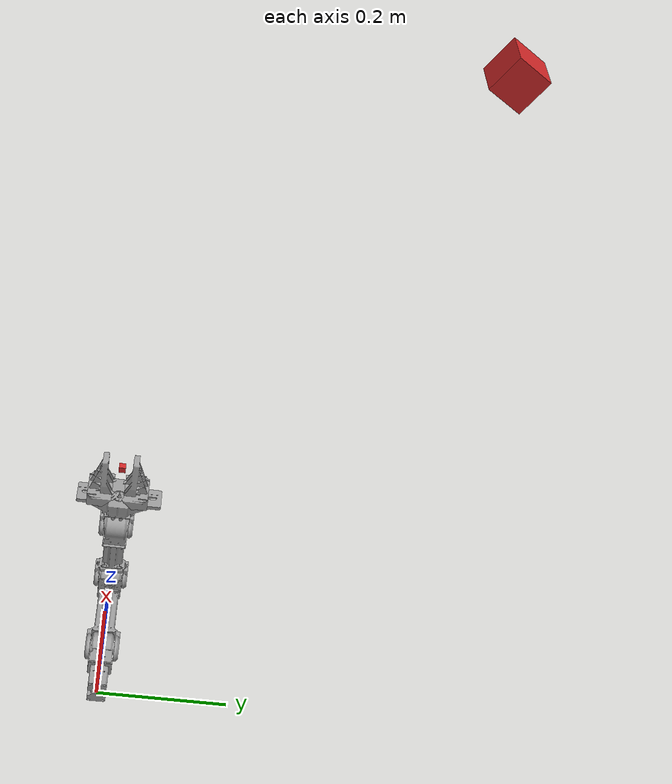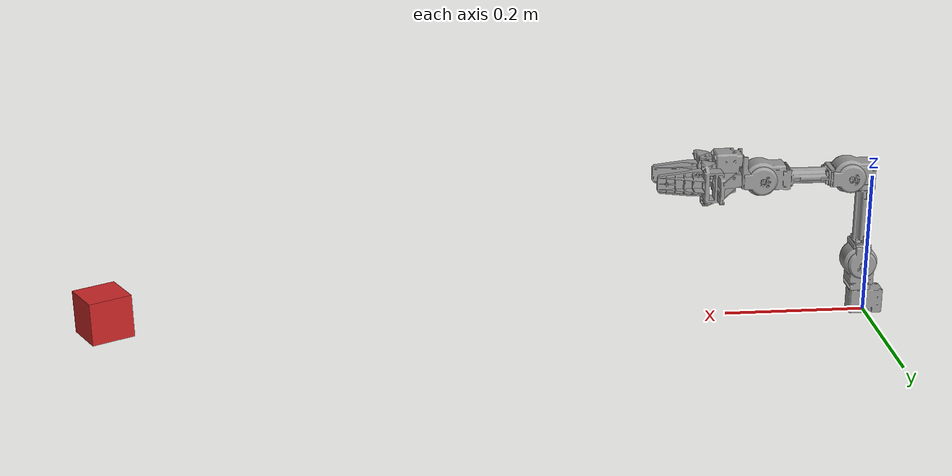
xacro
<?xml version="1.0"?>
<!-- Open_Manipulator Chain -->
<robot name="open_manipulator" xmlns:xacro="http://ros.org/wiki/xacro">

  <!-- Import all Gazebo-customization elements, including Gazebo colors -->
  <xacro:include filename="$(find open_manipulator_description)/urdf/open_manipulator.gazebo.xacro" />
  <!-- Import Rviz colors -->
  <xacro:include filename="$(find open_manipulator_description)/urdf/materials.xacro" />

  <!-- Transmission macro -->
  <xacro:macro name="SimpleTransmission" params="joint n">
    <transmission name="tran${n}">
      <type>transmission_interface/SimpleTransmission</type>
      <joint name="${joint}">
        <hardwareInterface>hardware_interface/PositionJointInterface</hardwareInterface>
      </joint>
      <actuator name="motor${n}">
        <hardwareInterface>hardware_interface/PositionJointInterface</hardwareInterface>
        <mechanicalReduction>1</mechanicalReduction>
      </actuator>
    </transmission>
  </xacro:macro>

  <!-- World -->
  <link name="world">
  </link>

  <!-- World fixed joint-->
  <joint name="world_fixed" type="fixed">
    <origin xyz="0 0 0" rpy="0 0 0"/>
    <parent link="world"/>
    <child link="link1"/>
  </joint>

  <!-- Link 1 -->
  <link name="link1">
    <visual>
      <origin xyz="0 0 0" rpy="0 0 0"/>
      <geometry>
        <mesh filename="package://open_manipulator_description/meshes/chain_link1.stl" scale="0.001 0.001 0.001"/>
      </geometry>
      <material name="grey"/>
    </visual>

    <collision>
      <origin xyz="0 0 0" rpy="0 0 0"/>
      <geometry>
        <mesh filename="package://open_manipulator_description/meshes/chain_link1.stl" scale="0.001 0.001 0.001"/>
      </geometry>
    </collision>

     <inertial>
      <origin xyz="3.0876154e-04 0.0000000e+00 -1.2176461e-04" />
      <mass value="7.9119962e-02" />
      <inertia ixx="1.2505234e-05" ixy="0.0" ixz="-1.7855208e-07"
               iyy="2.1898364e-05" iyz="0.0"
               izz="1.9267361e-05" />
    </inertial>
  </link>

  <!-- Joint 1 -->
  <joint name="joint1" type="revolute">
    <parent link="link1"/>
    <child link="link2"/>
    <origin xyz="0.012 0.0 0.017" rpy="0 0 0"/>
    <axis xyz="0 0 1"/>
    <limit velocity="4.8" effort="1" lower="${-pi*0.9}" upper="${pi*0.9}" />
  </joint>

  <!-- Transmission 1 -->
  <xacro:SimpleTransmission n="1" joint="joint1" />

  <!--  Link 2 -->
  <link name="link2">
    <visual>
      <origin xyz="0 0 0.019" rpy="0 0 0"/>
      <geometry>
        <mesh filename="package://open_manipulator_description/meshes/chain_link2.stl" scale="0.001 0.001 0.001"/>
      </geometry>
      <material name="grey"/>
    </visual>

    <collision>
      <origin xyz="0 0 0.019" rpy="0 0 0"/>
      <geometry>
        <mesh filename="package://open_manipulator_description/meshes/chain_link2.stl" scale="0.001 0.001 0.001"/>
      </geometry>
    </collision>

     <inertial>
      <origin xyz="-3.0184870e-04 5.4043684e-04 ${0.018 + 2.9433464e-02}" />
      <mass value="9.8406837e-02" />
      <inertia ixx="3.4543422e-05" ixy="-1.6031095e-08" ixz="-3.8375155e-07"
               iyy="3.2689329e-05" iyz="2.8511935e-08"
               izz="1.8850320e-05" />
    </inertial>
  </link>

  <!--  Joint 2 -->
  <joint name="joint2" type="revolute">
    <parent link="link2"/>
    <child link="link3"/>
    <origin xyz="0.0 0.0 0.0595" rpy="0 0 0"/>
    <axis xyz="0 1 0"/>
    <limit velocity="4.8" effort="1" lower="${-pi*0.57}" upper="${pi*0.5}" />
  </joint>

  <!-- Transmission 2 -->
  <xacro:SimpleTransmission n="2" joint="joint2" />

  <!--  Link 3 -->
  <link name="link3">
    <visual>
      <origin xyz="0 0 0" rpy="0 0 0"/>
      <geometry>
        <mesh filename="package://open_manipulator_description/meshes/chain_link3.stl" scale="0.001 0.001 0.001"/>
      </geometry>
      <material name="grey"/>
    </visual>

    <collision>
      <origin xyz="0 0 0" rpy="0 0 0"/>
      <geometry>
        <mesh filename="package://open_manipulator_description/meshes/chain_link3.stl" scale="0.001 0.001 0.001"/>
      </geometry>
    </collision>

     <inertial>
      <origin xyz="1.0308393e-02 3.7743363e-04 1.0170197e-01" />
      <mass value="1.3850917e-01" />
      <inertia ixx="3.3055381e-04" ixy="-9.7940978e-08" ixz="-3.8505711e-05"
               iyy="3.4290447e-04" iyz="-1.5717516e-06"
               izz="6.0346498e-05" />
    </inertial>
  </link>

  <!--  Joint 3 -->
  <joint name="joint3" type="revolute">
    <parent link="link3"/>
    <child link="link4"/>
    <origin xyz="0.024 0 0.128" rpy="0 0 0"/>
    <axis xyz="0 1 0"/>
    <limit velocity="4.8" effort="1" lower="${-pi*0.3}" upper="${pi*0.44}" />
  </joint>

  <!-- Transmission 3 -->
  <xacro:SimpleTransmission n="3" joint="joint3" />

  <!--  Link 4 -->
  <link name="link4">
    <visual>
      <origin xyz="0 0 0" rpy="0 0 0"/>
      <geometry>
        <mesh filename="package://open_manipulator_description/meshes/chain_link4.stl" scale="0.001 0.001 0.001"/>
      </geometry>
      <material name="grey"/>
    </visual>

    <collision>
      <origin xyz="0 0 0" rpy="0 0 0"/>
      <geometry>
        <mesh filename="package://open_manipulator_description/meshes/chain_link4.stl" scale="0.001 0.001 0.001"/>
      </geometry>
    </collision>

     <inertial>
      <origin xyz="9.0909590e-02 3.8929816e-04 2.2413279e-04" />
      <mass value="1.3274562e-01" />
      <inertia ixx="3.0654178e-05" ixy="-1.2764155e-06" ixz="-2.6874417e-07"
               iyy="2.4230292e-04" iyz="1.1559550e-08"
               izz="2.5155057e-04" />
    </inertial>
  </link>

  <!--  Joint 4 -->
  <joint name="joint4" type="revolute">
    <parent link="link4"/>
    <child link="link5"/>
    <origin xyz="0.124 0.0 0.0" rpy="0 0 0"/>
    <axis xyz="0 1 0"/>
    <limit velocity="4.8" effort="1" lower="${-pi*0.57}" upper="${pi*0.65}" />
  </joint>

  <!-- Transmission 4 -->
  <xacro:SimpleTransmission n="4" joint="joint4" />

  <!--  Link 5 -->
  <link name="link5">
    <visual>
      <origin xyz="0 0 0" rpy="0 0 0"/>
      <geometry>
        <mesh filename="package://open_manipulator_description/meshes/chain_link5.stl" scale="0.001 0.001 0.001"/>
      </geometry>
      <material name="grey"/>
    </visual>

    <collision>
      <origin xyz="0 0 0" rpy="0 0 0"/>
      <geometry>
        <mesh filename="package://open_manipulator_description/meshes/chain_link5.stl" scale="0.001 0.001 0.001"/>
      </geometry>
    </collision>

     <inertial>
      <origin xyz="4.4206755e-02 3.6839985e-07 8.9142216e-03" />
      <mass value="1.4327573e-01" />
      <inertia ixx="8.0870749e-05" ixy="0.0" ixz="-1.0157896e-06"
               iyy="7.5980465e-05" iyz="0.0"
               izz="9.3127351e-05" />
    </inertial>
  </link>

  <!--  Gripper link -->
  <link name="gripper_link">
    <visual>
      <origin xyz="0.0 0.0 0" rpy="0 0 0"/>
      <geometry>
        <mesh filename="package://open_manipulator_description/meshes/chain_link_grip_l.stl" scale="0.001 0.001 0.001"/>
      </geometry>
      <material name="grey"/>
    </visual>

    <collision>
      <origin xyz="0.0 0.0 0" rpy="0 0 0"/>
      <geometry>
        <mesh filename="package://open_manipulator_description/meshes/chain_link_grip_l.stl" scale="0.001 0.001 0.001"/>
      </geometry>
    </collision>

    <inertial>
      <origin xyz="0 0 0" />
      <mass value="0.017" />
      <inertia ixx="1.0e-03" ixy="0.0" ixz="0.0"
               iyy="1.0e-03" iyz="0.0"
               izz="1.0e-03" />
    </inertial>

  </link>

  <!--  Gripper joint -->
  <joint name="gripper" type="prismatic">
    <parent link="link5"/>
    <child link="gripper_link"/>
    <origin xyz="0.0817 0.021 0.0" rpy="0 0 0"/>
    <axis xyz="0 1 0"/>
    <limit velocity="4.8" effort="1" lower="-0.010" upper="0.019" />
  </joint>

  <!-- Transmission 5 -->
  <xacro:SimpleTransmission n="5" joint="gripper" />

  <!--  Gripper link sub -->
  <link name="gripper_link_sub">
    <visual>
      <origin xyz="0.0 -0.0 0" rpy="0 0 0"/>
      <geometry>
        <mesh filename="package://open_manipulator_description/meshes/chain_link_grip_r.stl" scale="0.001 0.001 0.001"/>
      </geometry>
      <material name="grey"/>
    </visual>

    <collision>
      <origin xyz="0.0 -0.0 0" rpy="0 0 0"/>
      <geometry>
        <mesh filename="package://open_manipulator_description/meshes/chain_link_grip_r.stl" scale="0.001 0.001 0.001"/>
      </geometry>
    </collision>

    <inertial>
      <origin xyz="0 0 0" />
      <mass value="0.017" />
      <inertia ixx="1.0e-03" ixy="0.0" ixz="0.0"
               iyy="1.0e-03" iyz="0.0"
               izz="1.0e-03" />
    </inertial>

  </link>

  <!--  Gripper joint sub -->
  <joint name="gripper_sub" type="prismatic">
    <parent link="link5"/>
    <child link="gripper_link_sub"/>
    <origin xyz="0.0817 -0.021 0" rpy="0 0 0"/>
    <axis xyz="0 -1 0"/>
    <limit velocity="4.8" effort="1" lower="-0.010" upper="0.019" />
    <mimic joint="gripper" multiplier="1"/>
  </joint>

  <!-- Transmission 6 -->
  <xacro:SimpleTransmission n="6" joint="gripper_sub" />

  <!-- end effector joint -->
  <joint name="end_effector_joint" type="fixed">
    <origin xyz="0.126 0.0 0.0" rpy="0 0 0"/>
    <parent link="link5"/>
    <child link="end_effector_link"/>
  </joint>

  <!-- end effector link -->
  <link name="end_effector_link">
    <visual>
      <origin xyz="0 0 0" rpy="0 0 0"/>
      <geometry>
        <box size="0.01 0.01 0.01" />
      </geometry>
      <material name="red"/>
     </visual>

    <inertial>
      <origin xyz="0.0 0.0 0.0" rpy="0 0 0"/>
      <mass value="0.001"/>
      <inertia ixx="1.0e-06" ixy="0.0" ixz="0.0" iyy="1.0e-06" iyz="0.0" izz="1.0e-06" />
    </inertial>
  </link>

  <!-- table camera -->
  <joint type="fixed" name="table_camera_joint">
    <origin xyz="1.0 0.4 0.2" rpy="0 0 3.6652"/>
    <child link="table_camera_link"/>
    <parent link="world"/>
  </joint>

  <link name='table_camera_link'>
    <pose>0 0 0 0 0 0</pose>
    <inertial>
      <mass value="1.0e-03"/>
      <origin xyz="0 0 0" rpy="0 0 0"/>
      <inertia
          ixx="1e-6" ixy="0" ixz="0"
          iyy="1e-6" iyz="0"
          izz="1e-6"
      />
    </inertial>

    <visual>
      <origin xyz="0 0 0" rpy="0 0 0"/>
      <geometry>
        <box size=".05 .05 .05"/>
      </geometry>
    </visual>

  </link>

  <gazebo reference="table_camera_link">
    <material>Gazebo/Red</material>
  </gazebo>

  <joint type="fixed" name="table_camera_optical_joint">
    <origin xyz="0 0 0" rpy="-1.5707 0 -1.5707"/>
    <child link="table_camera_link_optical"/>
    <parent link="table_camera_link"/>
  </joint>

  <link name="table_camera_link_optical">
  </link>

  <!-- Table RGBD camera -->
  <gazebo reference="table_camera_link">
    <sensor type="depth" name="table_camera">
      <always_on>1</always_on>
      <update_rate>20.0</update_rate>
      <visualize>false</visualize>
      <camera>
        <horizontal_fov>1.047</horizontal_fov>
        <image>
          <width>640</width>
          <height>480</height>
          <format>B8G8R8</format>
        </image>
        <clip>
          <near>0.5</near>
          <far>10.0</far>
        </clip>
      </camera>
      <plugin name="camera_controller" filename="libgazebo_ros_openni_kinect.so">
        <baseline>0.2</baseline>
        <alwaysOn>true</alwaysOn>
        <updateRate>0.0</updateRate>
        <cameraName>depth_camera</cameraName>
        <frameName>table_camera_link_optical</frameName>
        <imageTopicName>rgb/image_raw</imageTopicName>
        <depthImageTopicName>depth/image_raw</depthImageTopicName>
        <pointCloudTopicName>depth/points</pointCloudTopicName>
        <cameraInfoTopicName>rgb/camera_info</cameraInfoTopicName>
        <depthImageCameraInfoTopicName>depth/camera_info</depthImageCameraInfoTopicName>
        <pointCloudCutoff>0.5</pointCloudCutoff>
        <pointCloudCutoffMax>10.0</pointCloudCutoffMax>
        <hackBaseline>0.0</hackBaseline>
        <distortionK1>0.0</distortionK1>
        <distortionK2>0.0</distortionK2>
        <distortionK3>0.0</distortionK3>
        <distortionT1>0.0</distortionT1>
        <distortionT2>0.0</distortionT2>
        <CxPrime>0.0</CxPrime>
        <Cx>0.0</Cx>
        <Cy>0.0</Cy>
        <focalLength>0.0</focalLength>
      </plugin>
    </sensor>
  </gazebo>

</robot>
